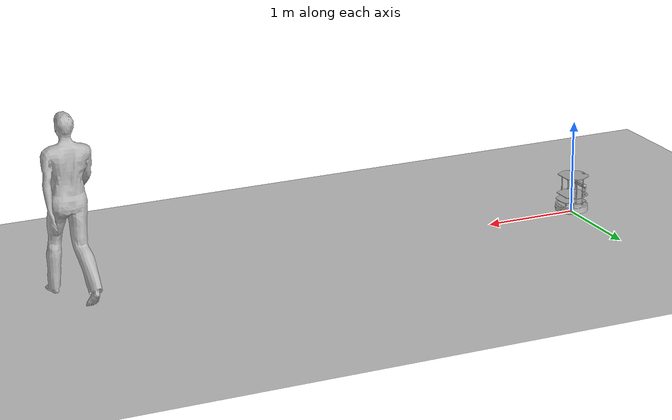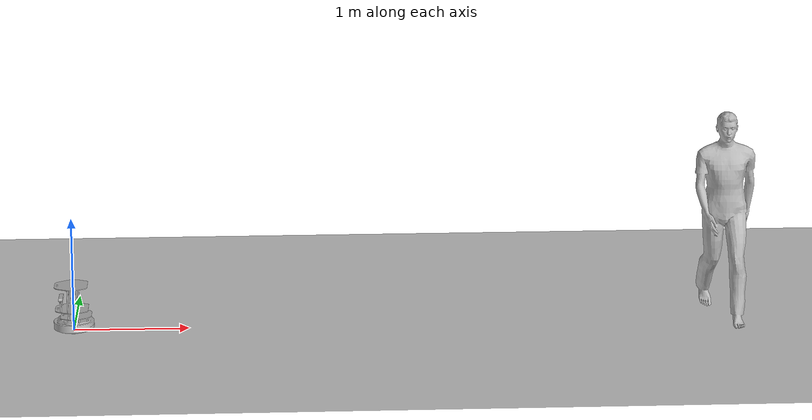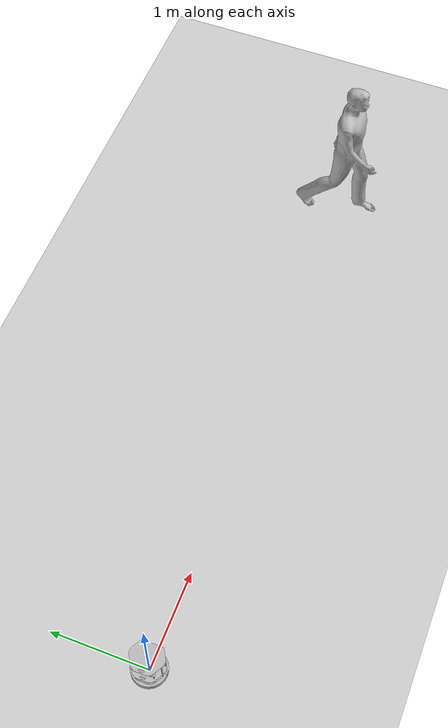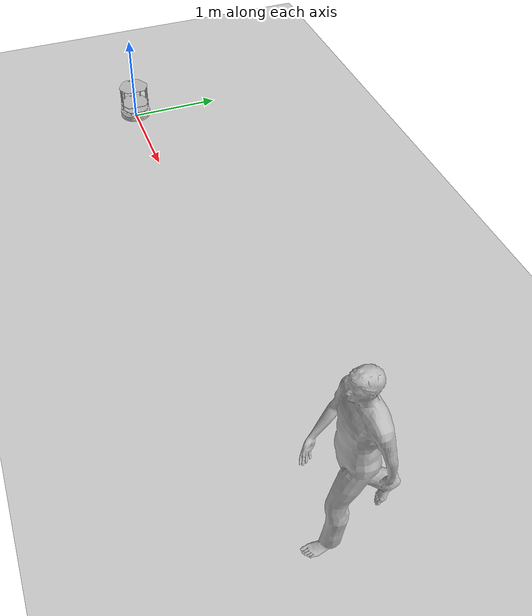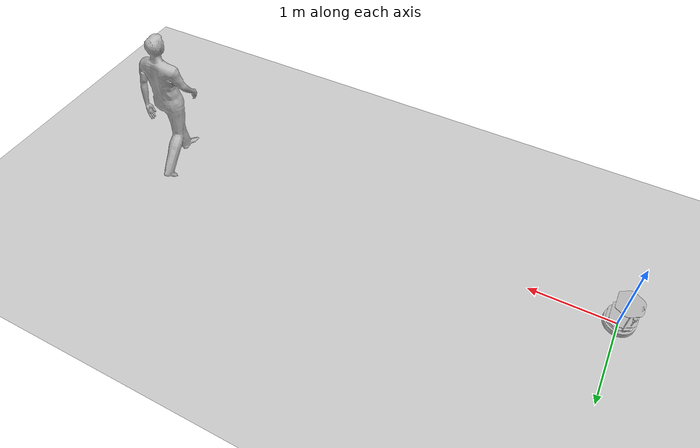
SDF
<sdf version="1.7">
 <world name="default">
  <light name="sun" type="directional">
   <pose>0 0 10 0 -0 0</pose>
   <diffuse>0.8 0.8 0.8 1</diffuse>
   <specular>0.2 0.2 0.2 1</specular>
   <attenuation>
    <range>1000</range>
    <constant>0.9</constant>
    <linear>0.01</linear>
    <quadratic>0.001</quadratic>
   </attenuation>
   <direction>-0.5 0.1 -0.9</direction>
   <spot><inner_angle>0</inner_angle><outer_angle>0</outer_angle><falloff>0</falloff></spot>
  </light>
  <model name="ground_plane">
   <static>1</static>
   <link name="link">
    <collision name="collision">
     <geometry><plane><normal>0 0 1</normal><size>100 100</size></plane></geometry>
     <surface>
      <contact><collide_bitmask>65535</collide_bitmask></contact>
      <friction><ode><mu>100</mu><mu2>50</mu2></ode></friction>
     </surface>
    </collision>
    <visual name="visual">
     <cast_shadows>0</cast_shadows>
     <geometry><plane><normal>0 0 1</normal><size>100 100</size></plane></geometry>
     <material>
      <script><uri>file://media/materials/scripts/gazebo.material</uri><name>Gazebo/Grey</name></script>
     </material>
    </visual>
   </link>
  </model>
  <gravity>0 0 -9.8</gravity>
  <magnetic_field>6e-06 2.3e-05 -4.2e-05</magnetic_field>
  <atmosphere type="adiabatic"/>
  <physics type="ode">
   <max_step_size>0.001</max_step_size>
   <real_time_factor>1</real_time_factor>
   <real_time_update_rate>1000</real_time_update_rate>
  </physics>
  <scene><ambient>0.4 0.4 0.4 1</ambient><background>0.7 0.7 0.7 1</background><shadows>1</shadows></scene>
  <spherical_coordinates>
   <surface_model>EARTH_WGS84</surface_model>
   <latitude_deg>0</latitude_deg>
   <longitude_deg>0</longitude_deg>
   <elevation>0</elevation>
   <heading_deg>0</heading_deg>
  </spherical_coordinates>
  <model name="mobile_base">
   <link name="base_footprint">
    <inertial>
     <pose>-0.002635 -4.1e-05 0.129243 0 -0 0</pose>
     <mass>4.6973</mass>
     <inertia>
      <ixx>0.1365</ixx>
      <ixy>-2.51802e-05</ixy>
      <ixz>0.0108194</ixz>
      <iyy>0.132157</iyy>
      <iyz>4.89572e-05</iyz>
      <izz>0.0741648</izz>
     </inertia>
    </inertial>
    <collision name="base_footprint_fixed_joint_lump__base_collision">
     <pose>0 0 0.06969 0 -0 0</pose>
     <geometry><cylinder><length>0.10938</length><radius>0.178</radius></cylinder></geometry>
    </collision>
    <collision name="base_footprint_fixed_joint_lump__camera_link_collision_1">
     <pose>-0.087 -0.0015 0.2972 0 -0 0</pose>
     <geometry><box><size>0.073 0.276 0.072</size></box></geometry>
    </collision>
    <collision name="base_footprint_fixed_joint_lump__caster_back_link_collision_2">
     <pose>-0.135 0 0.0192 -1.5708 0 0</pose>
     <geometry><cylinder><length>0.0176</length><radius>0.017</radius></cylinder></geometry>
     <surface>
      <contact><ode><kp>1e+06</kp><kd>100</kd><max_vel>1</max_vel><min_depth>0.001</min_depth></ode></contact>
      <friction><ode><mu>0</mu><mu2>0</mu2></ode></friction>
     </surface>
    </collision>
    <collision name="base_footprint_fixed_joint_lump__caster_front_link_collision_3">
     <pose>0.115 0 0.0172 -1.5708 0 0</pose>
     <geometry><cylinder><length>0.0176</length><radius>0.017</radius></cylinder></geometry>
     <surface>
      <contact><ode><kp>1e+06</kp><kd>100</kd><max_vel>1</max_vel><min_depth>0.001</min_depth></ode></contact>
      <friction><ode><mu>0</mu><mu2>0</mu2></ode></friction>
     </surface>
    </collision>
    <collision name="base_footprint_fixed_joint_lump__mount_xtion_pro_link_collision_4">
     <pose>-0.1024 0 0.2822 0 -0 0</pose>
     <geometry><box><size>0.033 0.276 0.012</size></box></geometry>
    </collision>
    <collision name="base_footprint_fixed_joint_lump__plate_bottom_link_collision_5">
     <pose>0 0 0.1408 0 -0 0</pose>
     <geometry><cylinder><length>0.006</length><radius>0.17</radius></cylinder></geometry>
    </collision>
    <collision name="base_footprint_fixed_joint_lump__plate_middle_link_collision_6">
     <pose>0 0 0.1976 0 -0 0</pose>
     <geometry>
      <mesh><scale>0.001 0.001 0.001</scale><uri>model://stacks/hexagons/plate_simple.stl</uri></mesh>
     </geometry>
    </collision>
    <collision name="base_footprint_fixed_joint_lump__plate_top_link_collision_7">
     <pose>0 0 0.4068 0 -0 0</pose>
     <geometry>
      <mesh><scale>0.001 0.001 0.001</scale><uri>model://stacks/hexagons/plate_simple.stl</uri></mesh>
     </geometry>
    </collision>
    <collision name="base_footprint_fixed_joint_lump__pole_bottom_0_link_collision_8">
     <pose>0.12 0.082 0.113 0 -0 0</pose>
     <geometry><cylinder><length>0.0492</length><radius>0.006</radius></cylinder></geometry>
    </collision>
    <collision name="base_footprint_fixed_joint_lump__pole_bottom_1_link_collision_9">
     <pose>0.055 0.12 0.113 0 -0 0</pose>
     <geometry><cylinder><length>0.0492</length><radius>0.006</radius></cylinder></geometry>
    </collision>
    <collision name="base_footprint_fixed_joint_lump__pole_bottom_2_link_collision_10">
     <pose>-0.055 0.12 0.113 0 -0 0</pose>
     <geometry><cylinder><length>0.0492</length><radius>0.006</radius></cylinder></geometry>
    </collision>
    <collision name="base_footprint_fixed_joint_lump__pole_bottom_3_link_collision_11">
     <pose>0.12 -0.082 0.113 0 -0 0</pose>
     <geometry><cylinder><length>0.0492</length><radius>0.006</radius></cylinder></geometry>
    </collision>
    <collision name="base_footprint_fixed_joint_lump__pole_bottom_4_link_collision_12">
     <pose>0.055 -0.12 0.113 0 -0 0</pose>
     <geometry><cylinder><length>0.0492</length><radius>0.006</radius></cylinder></geometry>
    </collision>
    <collision name="base_footprint_fixed_joint_lump__pole_bottom_5_link_collision_13">
     <pose>-0.055 -0.12 0.113 0 -0 0</pose>
     <geometry><cylinder><length>0.0492</length><radius>0.006</radius></cylinder></geometry>
    </collision>
    <collision name="base_footprint_fixed_joint_lump__pole_kinect_0_link_collision_14">
     <pose>-0.1024 0.098 0.2474 0 -0 0</pose>
     <geometry><cylinder><length>0.0936</length><radius>0.006</radius></cylinder></geometry>
    </collision>
    <collision name="base_footprint_fixed_joint_lump__pole_kinect_1_link_collision_15">
     <pose>-0.1024 -0.098 0.2474 0 -0 0</pose>
     <geometry><cylinder><length>0.0936</length><radius>0.006</radius></cylinder></geometry>
    </collision>
    <collision name="base_footprint_fixed_joint_lump__pole_middle_0_link_collision_16">
     <pose>0.0381 0.1505 0.1742 0 -0 0</pose>
     <geometry><cylinder><length>0.0608</length><radius>0.006</radius></cylinder></geometry>
    </collision>
    <collision name="base_footprint_fixed_joint_lump__pole_middle_1_link_collision_17">
     <pose>0.0381 -0.1505 0.1742 0 -0 0</pose>
     <geometry><cylinder><length>0.0608</length><radius>0.006</radius></cylinder></geometry>
    </collision>
    <collision name="base_footprint_fixed_joint_lump__pole_middle_2_link_collision_18">
     <pose>-0.0381 0.1505 0.1742 0 -0 0</pose>
     <geometry><cylinder><length>0.0608</length><radius>0.006</radius></cylinder></geometry>
    </collision>
    <collision name="base_footprint_fixed_joint_lump__pole_middle_3_link_collision_19">
     <pose>-0.0381 -0.1505 0.1742 0 -0 0</pose>
     <geometry><cylinder><length>0.0608</length><radius>0.006</radius></cylinder></geometry>
    </collision>
    <collision name="base_footprint_fixed_joint_lump__pole_top_0_link_collision_20">
     <pose>0.0381 0.1505 0.3022 0 -0 0</pose>
     <geometry><cylinder><length>0.2032</length><radius>0.006</radius></cylinder></geometry>
    </collision>
    <collision name="base_footprint_fixed_joint_lump__pole_top_1_link_collision_21">
     <pose>0.0381 -0.1505 0.3022 0 -0 0</pose>
     <geometry><cylinder><length>0.2032</length><radius>0.006</radius></cylinder></geometry>
    </collision>
    <collision name="base_footprint_fixed_joint_lump__pole_top_2_link_collision_22">
     <pose>-0.0381 0.1505 0.3022 0 -0 0</pose>
     <geometry><cylinder><length>0.2032</length><radius>0.006</radius></cylinder></geometry>
    </collision>
    <collision name="base_footprint_fixed_joint_lump__pole_top_3_link_collision_23">
     <pose>-0.0381 -0.1505 0.3022 0 -0 0</pose>
     <geometry><cylinder><length>0.2032</length><radius>0.006</radius></cylinder></geometry>
    </collision>
    <visual name="base_footprint_fixed_joint_lump__base_link_visual">
     <pose>0.001 0 0.06219 0 -0 0</pose>
     <geometry>
      <mesh>
       <scale>1 1 1</scale>
       <uri>/home/asahel/tb2_ws/src/kobuki_ros/kobuki/kobuki_description/meshes/main_body.dae</uri>
      </mesh>
     </geometry>
    </visual>
    <visual name="base_footprint_fixed_joint_lump__camera_link_visual_1">
     <pose>-0.102 0.002 0.3012 0 -0 0</pose>
     <geometry><mesh><scale>1 1 1</scale><uri>model://sensors/xtion_pro_camera.dae</uri></mesh></geometry>
    </visual>
    <visual name="base_footprint_fixed_joint_lump__mount_xtion_pro_link_visual_2">
     <pose>-0.1024 0 0.2822 -1.5708 0 0</pose>
     <geometry><mesh><scale>1 1 1</scale><uri>model://sensors/xtion_pro_stack.dae</uri></mesh></geometry>
    </visual>
    <visual name="base_footprint_fixed_joint_lump__plate_bottom_link_visual_3">
     <pose>0.02364 0 0.1408 0 -0 0</pose>
     <geometry><mesh><scale>1 1 1</scale><uri>model://stacks/hexagons/plate_bottom.dae</uri></mesh></geometry>
    </visual>
    <visual name="base_footprint_fixed_joint_lump__plate_middle_link_visual_4">
     <pose>-0.01364 0 0.1976 0 -0 0</pose>
     <geometry><mesh><scale>1 1 1</scale><uri>model://stacks/hexagons/plate_middle.dae</uri></mesh></geometry>
    </visual>
    <visual name="base_footprint_fixed_joint_lump__plate_top_link_visual_5">
     <pose>-0.01364 0 0.4068 0 -0 0</pose>
     <geometry><mesh><scale>1 1 1</scale><uri>model://stacks/hexagons/plate_top.dae</uri></mesh></geometry>
    </visual>
    <visual name="base_footprint_fixed_joint_lump__pole_bottom_0_link_visual_6">
     <pose>0.12 0.082 0.113 0 -0 0</pose>
     <geometry><mesh><scale>1 1 1</scale><uri>model://stacks/hexagons/pole_bottom.dae</uri></mesh></geometry>
    </visual>
    <visual name="base_footprint_fixed_joint_lump__pole_bottom_1_link_visual_7">
     <pose>0.055 0.12 0.113 0 -0 0</pose>
     <geometry><mesh><scale>1 1 1</scale><uri>model://stacks/hexagons/pole_bottom.dae</uri></mesh></geometry>
    </visual>
    <visual name="base_footprint_fixed_joint_lump__pole_bottom_2_link_visual_8">
     <pose>-0.055 0.12 0.113 0 -0 0</pose>
     <geometry><mesh><scale>1 1 1</scale><uri>model://stacks/hexagons/pole_bottom.dae</uri></mesh></geometry>
    </visual>
    <visual name="base_footprint_fixed_joint_lump__pole_bottom_3_link_visual_9">
     <pose>0.12 -0.082 0.113 0 -0 0</pose>
     <geometry><mesh><scale>1 1 1</scale><uri>model://stacks/hexagons/pole_bottom.dae</uri></mesh></geometry>
    </visual>
    <visual name="base_footprint_fixed_joint_lump__pole_bottom_4_link_visual_10">
     <pose>0.055 -0.12 0.113 0 -0 0</pose>
     <geometry><mesh><scale>1 1 1</scale><uri>model://stacks/hexagons/pole_bottom.dae</uri></mesh></geometry>
    </visual>
    <visual name="base_footprint_fixed_joint_lump__pole_bottom_5_link_visual_11">
     <pose>-0.055 -0.12 0.113 0 -0 0</pose>
     <geometry><mesh><scale>1 1 1</scale><uri>model://stacks/hexagons/pole_bottom.dae</uri></mesh></geometry>
    </visual>
    <visual name="base_footprint_fixed_joint_lump__pole_kinect_0_link_visual_12">
     <pose>-0.1024 0.098 0.2474 0 -0 0</pose>
     <geometry><mesh><scale>1 1 1</scale><uri>model://stacks/hexagons/pole_kinect.dae</uri></mesh></geometry>
    </visual>
    <visual name="base_footprint_fixed_joint_lump__pole_kinect_1_link_visual_13">
     <pose>-0.1024 -0.098 0.2474 0 -0 0</pose>
     <geometry><mesh><scale>1 1 1</scale><uri>model://stacks/hexagons/pole_kinect.dae</uri></mesh></geometry>
    </visual>
    <visual name="base_footprint_fixed_joint_lump__pole_middle_0_link_visual_14">
     <pose>0.0381 0.1505 0.1742 3.14159 -0 3.14159</pose>
     <geometry><mesh><scale>1 1 1</scale><uri>model://stacks/hexagons/pole_middle.dae</uri></mesh></geometry>
    </visual>
    <visual name="base_footprint_fixed_joint_lump__pole_middle_1_link_visual_15">
     <pose>0.0381 -0.1505 0.1742 3.14159 -0 3.14159</pose>
     <geometry><mesh><scale>1 1 1</scale><uri>model://stacks/hexagons/pole_middle.dae</uri></mesh></geometry>
    </visual>
    <visual name="base_footprint_fixed_joint_lump__pole_middle_2_link_visual_16">
     <pose>-0.0381 0.1505 0.1742 3.14159 -0 3.14159</pose>
     <geometry><mesh><scale>1 1 1</scale><uri>model://stacks/hexagons/pole_middle.dae</uri></mesh></geometry>
    </visual>
    <visual name="base_footprint_fixed_joint_lump__pole_middle_3_link_visual_17">
     <pose>-0.0381 -0.1505 0.1742 3.14159 -0 3.14159</pose>
     <geometry><mesh><scale>1 1 1</scale><uri>model://stacks/hexagons/pole_middle.dae</uri></mesh></geometry>
    </visual>
    <visual name="base_footprint_fixed_joint_lump__pole_top_0_link_visual_18">
     <pose>0.0381 0.1505 0.3022 0 -0 0</pose>
     <geometry><mesh><scale>1 1 1</scale><uri>model://stacks/hexagons/pole_top.dae</uri></mesh></geometry>
    </visual>
    <visual name="base_footprint_fixed_joint_lump__pole_top_1_link_visual_19">
     <pose>0.0381 -0.1505 0.3022 0 -0 0</pose>
     <geometry><mesh><scale>1 1 1</scale><uri>model://stacks/hexagons/pole_top.dae</uri></mesh></geometry>
    </visual>
    <visual name="base_footprint_fixed_joint_lump__pole_top_2_link_visual_20">
     <pose>-0.0381 0.1505 0.3022 0 -0 0</pose>
     <geometry><mesh><scale>1 1 1</scale><uri>model://stacks/hexagons/pole_top.dae</uri></mesh></geometry>
    </visual>
    <visual name="base_footprint_fixed_joint_lump__pole_top_3_link_visual_21">
     <pose>-0.0381 -0.1505 0.3022 0 -0 0</pose>
     <geometry><mesh><scale>1 1 1</scale><uri>model://stacks/hexagons/pole_top.dae</uri></mesh></geometry>
    </visual>
    <sensor name="bumpers" type="contact">
     <always_on>1</always_on>
     <update_rate>50</update_rate>
     <visualize>1</visualize>
     <contact>
      <collision>base_footprint_fixed_joint_lump__base_collision</collision>
      <topic>__default_topic__</topic>
     </contact>
     <pose>0 0 0.0102 0 -0 0</pose>
    </sensor>
    <sensor name="camera" type="depth">
     <always_on>1</always_on>
     <update_rate>20</update_rate>
     <camera>
      <horizontal_fov>1.0472</horizontal_fov>
      <image><format>B8G8R8</format><width>640</width><height>480</height></image>
      <clip><near>0.05</near><far>8</far></clip>
     </camera>
     <plugin name="kinect_camera_controller" filename="libgazebo_ros_openni_kinect.so">
      <cameraName>camera</cameraName>
      <alwaysOn>1</alwaysOn>
      <updateRate>10</updateRate>
      <imageTopicName>rgb/image_raw</imageTopicName>
      <depthImageTopicName>depth/image_raw</depthImageTopicName>
      <pointCloudTopicName>depth/points</pointCloudTopicName>
      <cameraInfoTopicName>rgb/camera_info</cameraInfoTopicName>
      <depthImageCameraInfoTopicName>depth/camera_info</depthImageCameraInfoTopicName>
      <frameName>camera_depth_optical_frame</frameName>
      <baseline>0.1</baseline>
      <distortion_k1>0.0</distortion_k1>
      <distortion_k2>0.0</distortion_k2>
      <distortion_k3>0.0</distortion_k3>
      <distortion_t1>0.0</distortion_t1>
      <distortion_t2>0.0</distortion_t2>
      <pointCloudCutoff>0.4</pointCloudCutoff>
      <robotNamespace>/</robotNamespace>
     </plugin>
     <pose>-0.087 -0.0015 0.2972 0 -0 0</pose>
    </sensor>
    <sensor name="cliff_sensor_front" type="ray">
     <always_on>1</always_on>
     <update_rate>50</update_rate>
     <visualize>1</visualize>
     <ray>
      <scan>
       <horizontal>
        <samples>50</samples>
        <resolution>1</resolution>
        <min_angle>-0.0436</min_angle>
        <max_angle>0.0436</max_angle>
       </horizontal>
       <vertical><samples>1</samples><min_angle>0</min_angle><max_angle>0</max_angle></vertical>
      </scan>
      <range><min>0.01</min><max>0.15</max><resolution>1</resolution></range>
     </ray>
     <pose>0.156 0 0.0316 3.14159 1.57079 3.14159</pose>
    </sensor>
    <sensor name="cliff_sensor_left" type="ray">
     <always_on>1</always_on>
     <update_rate>50</update_rate>
     <visualize>1</visualize>
     <ray>
      <scan>
       <horizontal>
        <samples>50</samples>
        <resolution>1</resolution>
        <min_angle>-0.0436</min_angle>
        <max_angle>0.0436</max_angle>
       </horizontal>
       <vertical><samples>1</samples><min_angle>0</min_angle><max_angle>0</max_angle></vertical>
      </scan>
      <range><min>0.01</min><max>0.15</max><resolution>1</resolution></range>
     </ray>
     <pose>0.08734 0.13601 0.0316 3.14159 1.57079 3.14159</pose>
    </sensor>
    <sensor name="cliff_sensor_right" type="ray">
     <always_on>1</always_on>
     <update_rate>50</update_rate>
     <visualize>1</visualize>
     <ray>
      <scan>
       <horizontal>
        <samples>50</samples>
        <resolution>1</resolution>
        <min_angle>-0.0436</min_angle>
        <max_angle>0.0436</max_angle>
       </horizontal>
       <vertical><samples>1</samples><min_angle>0</min_angle><max_angle>0</max_angle></vertical>
      </scan>
      <range><min>0.01</min><max>0.15</max><resolution>1</resolution></range>
     </ray>
     <pose>0.085 -0.13601 0.0316 3.14159 1.57079 3.14159</pose>
    </sensor>
    <sensor name="imu" type="imu">
     <always_on>1</always_on>
     <update_rate>50</update_rate>
     <visualize>0</visualize>
     <imu>
      <noise>
       <type>gaussian</type>
       <rate><mean>0.0</mean><stddev>1.96e-06</stddev><bias_mean>0.0</bias_mean><bias_stddev>0.0</bias_stddev></rate>
       <accel>
        <mean>0.0</mean>
        <stddev>1.7e-2</stddev>
        <bias_mean>0.1</bias_mean>
        <bias_stddev>0.001</bias_stddev>
       </accel>
      </noise>
     </imu>
     <pose>0.056 0.062 0.0304 0 -0 0</pose>
    </sensor>
   </link>
   <joint name="wheel_left_joint" type="revolute">
    <pose relative_to="base_footprint">0 0.115 0.0352 -1.5708 0 0</pose>
    <parent>base_footprint</parent>
    <child>wheel_left_link</child>
    <axis>
     <xyz>0 0 1</xyz>
     <limit><lower>-1e+16</lower><upper>1e+16</upper></limit>
     <dynamics><spring_reference>0</spring_reference><spring_stiffness>0</spring_stiffness></dynamics>
    </axis>
   </joint>
   <link name="wheel_left_link">
    <pose relative_to="wheel_left_joint">0 0 0 0 -0 0</pose>
    <inertial>
     <mass>0.01</mass>
     <inertia><ixx>0.001</ixx><ixy>0</ixy><ixz>0</ixz><iyy>0.001</iyy><iyz>0</iyz><izz>0.001</izz></inertia>
    </inertial>
    <collision name="wheel_left_link_collision">
     <geometry><cylinder><length>0.0206</length><radius>0.035</radius></cylinder></geometry>
     <surface>
      <contact><ode><kp>1e+06</kp><kd>100</kd><max_vel>1</max_vel><min_depth>0.001</min_depth></ode></contact>
      <friction><ode><mu>1</mu><mu2>1</mu2></ode></friction>
     </surface>
    </collision>
    <visual name="wheel_left_link_visual">
     <geometry>
      <mesh>
       <scale>1 1 1</scale>
       <uri>/home/asahel/tb2_ws/src/kobuki_ros/kobuki/kobuki_description/meshes/wheel.dae</uri>
      </mesh>
     </geometry>
    </visual>
    <sensor name="wheel_drop_left" type="contact">
     <always_on>1</always_on>
     <update_rate>50</update_rate>
     <visualize>1</visualize>
     <contact><collision>wheel_left_link_collision</collision><topic>__default_topic__</topic></contact>
    </sensor>
   </link>
   <joint name="wheel_right_joint" type="revolute">
    <pose relative_to="base_footprint">0 -0.115 0.0352 -1.5708 0 0</pose>
    <parent>base_footprint</parent>
    <child>wheel_right_link</child>
    <axis>
     <xyz>0 0 1</xyz>
     <limit><lower>-1e+16</lower><upper>1e+16</upper></limit>
     <dynamics><spring_reference>0</spring_reference><spring_stiffness>0</spring_stiffness></dynamics>
    </axis>
   </joint>
   <link name="wheel_right_link">
    <pose relative_to="wheel_right_joint">0 0 0 0 -0 0</pose>
    <inertial>
     <mass>0.01</mass>
     <inertia><ixx>0.001</ixx><ixy>0</ixy><ixz>0</ixz><iyy>0.001</iyy><iyz>0</iyz><izz>0.001</izz></inertia>
    </inertial>
    <collision name="wheel_right_link_collision">
     <geometry><cylinder><length>0.0206</length><radius>0.035</radius></cylinder></geometry>
     <surface>
      <contact><ode><kp>1e+06</kp><kd>100</kd><max_vel>1</max_vel><min_depth>0.001</min_depth></ode></contact>
      <friction><ode><mu>1</mu><mu2>1</mu2></ode></friction>
     </surface>
    </collision>
    <visual name="wheel_right_link_visual">
     <geometry>
      <mesh>
       <scale>1 1 1</scale>
       <uri>/home/asahel/tb2_ws/src/kobuki_ros/kobuki/kobuki_description/meshes/wheel.dae</uri>
      </mesh>
     </geometry>
    </visual>
    <sensor name="wheel_drop_right" type="contact">
     <always_on>1</always_on>
     <update_rate>50</update_rate>
     <visualize>1</visualize>
     <contact><collision>wheel_right_link_collision</collision><topic>__default_topic__</topic></contact>
    </sensor>
   </link>
   <static>0</static>
   <plugin name="kobuki_controller" filename="libgazebo_ros_kobuki.so">
    <publish_tf>1</publish_tf>
    <left_wheel_joint_name>wheel_left_joint</left_wheel_joint_name>
    <right_wheel_joint_name>wheel_right_joint</right_wheel_joint_name>
    <wheel_separation>.230</wheel_separation>
    <wheel_diameter>0.070</wheel_diameter>
    <torque>1.0</torque>
    <velocity_command_timeout>0.6</velocity_command_timeout>
    <cliff_sensor_left_name>cliff_sensor_left</cliff_sensor_left_name>
    <cliff_sensor_center_name>cliff_sensor_front</cliff_sensor_center_name>
    <cliff_sensor_right_name>cliff_sensor_right</cliff_sensor_right_name>
    <cliff_detection_threshold>0.04</cliff_detection_threshold>
    <bumper_name>bumpers</bumper_name>
    <imu_name>imu</imu_name>
    <wheel_drop_left_sensor_name>wheel_drop_left</wheel_drop_left_sensor_name>
    <wheel_drop_right_sensor_name>wheel_drop_right</wheel_drop_right_sensor_name>
    <robotNamespace>/</robotNamespace>
   </plugin>
   <pose>3.9e-05 5e-06 -0.000341 -9.1e-05 -0.013764 0.000529</pose>
  </model>
  <model name="person_walking">
   <link name="link">
    <inertial>
     <pose>0 0 0.95 0 -0 0</pose>
     <mass>80</mass>
     <inertia><ixx>27.82</ixx><ixy>0</ixy><ixz>0</ixz><iyy>24.88</iyy><iyz>0</iyz><izz>4.57</izz></inertia>
    </inertial>
    <collision name="bottom">
     <pose>0 0 0.01 0 -0 0</pose>
     <geometry><box><size>0.35 0.75 0.02</size></box></geometry>
    </collision>
    <collision name="person">
     <pose>0 0 -0.02 0 -0 0</pose>
     <geometry><mesh><uri>model://person_walking/meshes/walking.dae</uri></mesh></geometry>
    </collision>
    <visual name="visual">
     <pose>0 0 -0.02 0 -0 0</pose>
     <geometry><mesh><uri>model://person_walking/meshes/walking.dae</uri></mesh></geometry>
    </visual>
    <plugin name="model_push" filename="libgazebo_ros_model_push.so">
     <ros><namespace>/person_walking</namespace><remapping>cmd_vel:=cmd_vel</remapping></ros>
    </plugin>
   </link>
   <pose>5.69559 0.093207 -1e-06 -2e-06 1e-06 0.000294</pose>
  </model>
 </world>
</sdf>
